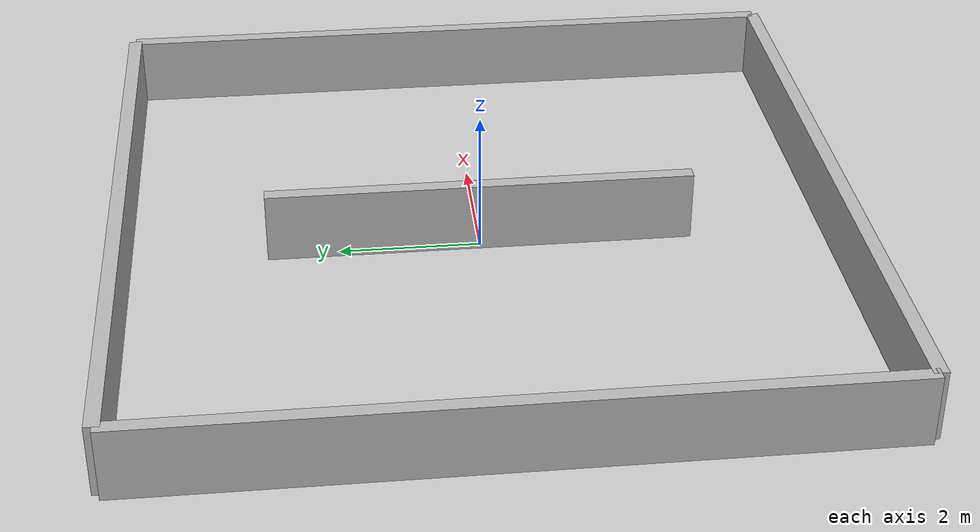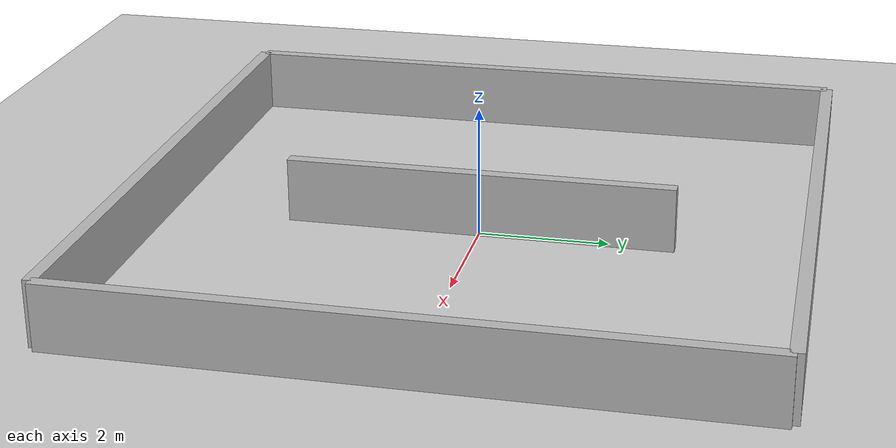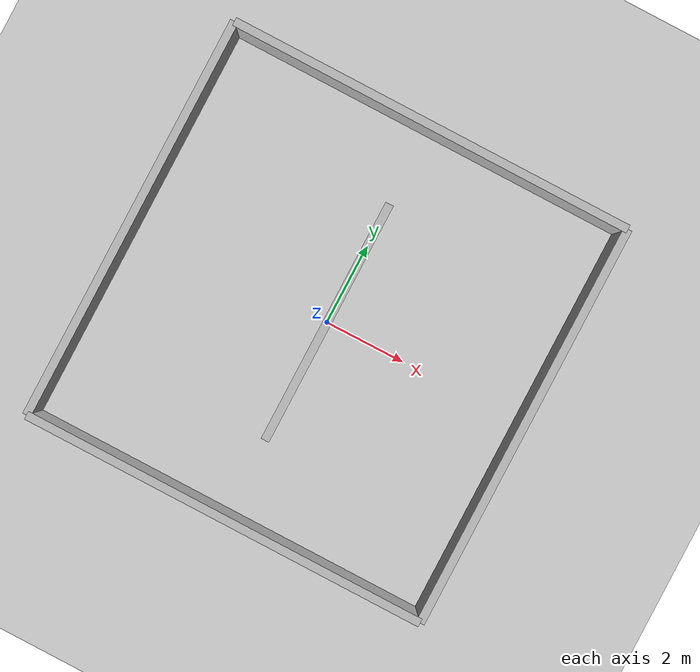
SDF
<?xml version="1.0"?>
<sdf version="1.6">
  <world name="default">
    <plugin filename="libgz-sim-user-commands-system.so" name="gz::sim::systems::UserCommands"></plugin>
  <plugin
    filename="gz-sim-scene-broadcaster-system"
    name="gz::sim::systems::SceneBroadcaster">
  </plugin>
  <plugin
    filename="gz-sim-sensors-system"
    name="gz::sim::systems::Sensors">
    <render_engine>ogre2</render_engine>
  </plugin>
  <plugin
    filename="gz-sim-imu-system"
    name="gz::sim::systems::Imu">
  </plugin>
    <include>
      <uri>https://fuel.gazebosim.org/1.0/OpenRobotics/models/Ground Plane</uri>
    </include>

    <include>
      <uri>https://fuel.gazebosim.org/1.0/OpenRobotics/models/Sun</uri>
    </include>

    <scene>
      <shadows>false</shadows>
    </scene>

    <gui fullscreen='0'>
      <camera name='user_camera'>
        <pose frame=''>0.319654 -0.235002 9.29441 0 1.5138 0.009599</pose>
        <view_controller>orbit</view_controller>
        <projection_type>perspective</projection_type>
      </camera>
    </gui>

    <physics type="ode">
      <real_time_update_rate>1000.0</real_time_update_rate>
      <max_step_size>0.001</max_step_size>
      <real_time_factor>1</real_time_factor>
      <ode>
        <solver>
          <type>quick</type>
          <iters>150</iters>
          <precon_iters>0</precon_iters>
          <sor>1.400000</sor>
          <use_dynamic_moi_rescaling>1</use_dynamic_moi_rescaling>
        </solver>
        <constraints>
          <cfm>0.00001</cfm>
          <erp>0.2</erp>
          <contact_max_correcting_vel>2000.000000</contact_max_correcting_vel>
          <contact_surface_layer>0.01000</contact_surface_layer>
        </constraints>
      </ode>
    </physics>

    <model name="maze">
      <static>1</static>
      <include>
        <uri>model://maze</uri>
      </include>
    </model>

  </world>
</sdf>

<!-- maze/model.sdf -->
<sdf version="1.8">
  <model name="maze">
    <static>true</static>

    <!-- walls are 10m long, 0.2m thick, 1.0m tall -->
    <!-- north -->
    <link name="wall_n">
      <pose>0 5 0.5 0 0 0</pose>
      <collision name="col"><geometry><box><size>10 0.2 1.0</size></box></geometry></collision>
      <visual name="vis"><geometry><box><size>10 0.2 1.0</size></box></geometry></visual>
    </link>
    <!-- south -->
    <link name="wall_s">
      <pose>0 -5 0.5 0 0 0</pose>
      <collision name="col"><geometry><box><size>10 0.2 1.0</size></box></geometry></collision>
      <visual name="vis"><geometry><box><size>10 0.2 1.0</size></box></geometry></visual>
    </link>
    <!-- east -->
    <link name="wall_e">
      <pose>5 0 0.5 0 0 1.57079632679</pose>
      <collision name="col"><geometry><box><size>10 0.2 1.0</size></box></geometry></collision>
      <visual name="vis"><geometry><box><size>10 0.2 1.0</size></box></geometry></visual>
    </link>
    <!-- west -->
    <link name="wall_w">
      <pose>-5 0 0.5 0 0 1.57079632679</pose>
      <collision name="col"><geometry><box><size>10 0.2 1.0</size></box></geometry></collision>
      <visual name="vis"><geometry><box><size>10 0.2 1.0</size></box></geometry></visual>
    </link>
    <!-- inner divider -->
    <link name="wall_inner">
      <pose>0 0 0.5 0 0 1.57079632679</pose>
      <collision name="col"><geometry><box><size>6 0.2 1.0</size></box></geometry></collision>
      <visual name="vis"><geometry><box><size>6 0.2 1.0</size></box></geometry></visual>
    </link>
  </model>
</sdf>
